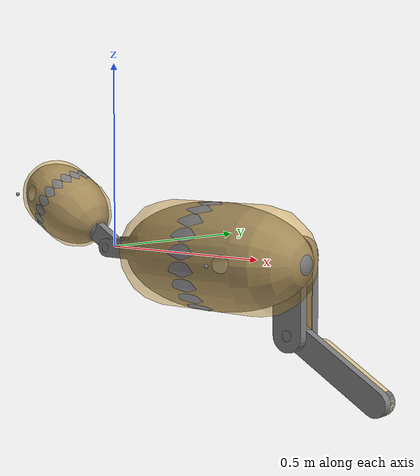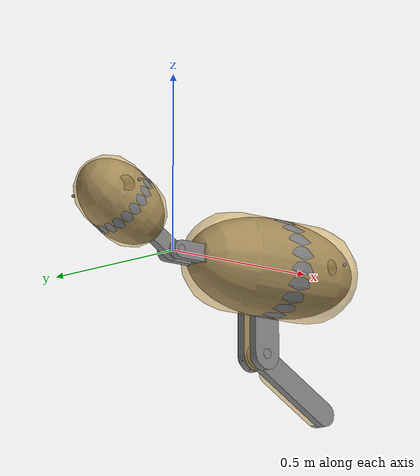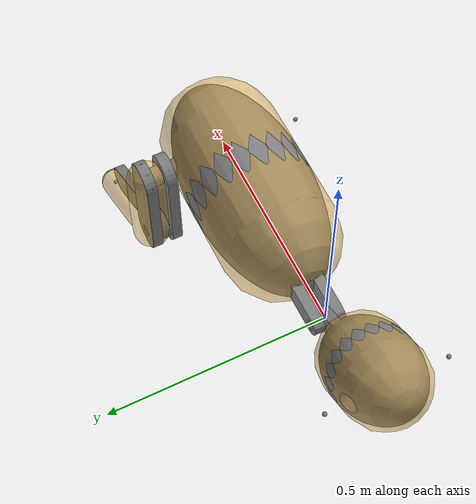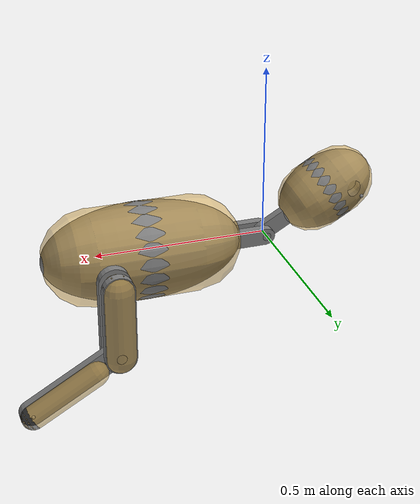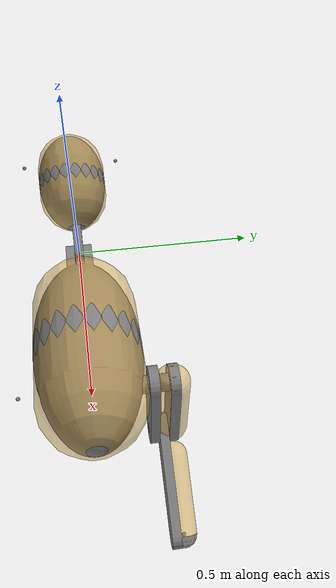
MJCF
<mujoco model="cheetah">
  <compiler angle="radian" meshdir="meshes/"/>

  <asset>
    <mesh name="base" file="base.STL"/>
    <mesh name="spine" file="spine.STL"/>
    <mesh name="fl_hip" file="fl_hip.STL"/>
    <mesh name="fl_knee" file="fl_knee.STL"/>
  </asset>

  <worldbody>
    <body name="base">
      <inertial pos="0.36059 -3.5411e-08 2.6263e-08" quat="0.500003 0.500003 0.499997 0.499997" mass="4" diaginertia="0.086585 0.086267 0.031067"/>
      <geom type="mesh" mesh="base"/>
      <geom size="0.14 0.15" pos="0.365 0 0" quat="0.707107 0 -0.707107 0" type="capsule" rgba="0.85 0.65 0.25 0.5"/>
      <site name="imu_frame" pos="0.485 0 0"/>
      <site name="fl_hip_mount" pos="0.485 0.1775 0"/>
      <site name="fr_hip_mount" pos="0.485 -0.1775 0"/>
      <body name="spine" quat="0.965926 0 0.25882 0">
        <inertial pos="-0.21386 2.4147e-07 -3.6136e-08" quat="0.500007 0.499998 0.5 0.499994" mass="2.818" diaginertia="0.019596 0.019319 0.0104"/>
        <joint name="spine_joint" pos="0 0 0" axis="0 1 0" range="-0.78 0.78" armature="0.011" damping="0.024"/>
        <geom type="mesh" mesh="spine"/>
        <geom size="0.0975 0.04875" pos="-0.22125 0 0" quat="0.707107 0 0.707107 0" type="capsule" rgba="0.85 0.65 0.25 0.5"/>
        <site name="bl_hip_mount" pos="-0.28023 0.1375 0" quat="0.999048 0 0.0436192 0"/>
        <site name="br_hip_mount" pos="-0.28023 -0.1375 0" quat="0.999048 0 0.0436192 0"/>
      </body>
      <body name="fl_hip" pos="0.485 0.1775 0">
        <inertial pos="0 -0.0083713 -0.088755" quat="0.997892 0.0648985 0 0" mass="0.42319" diaginertia="0.0034493 0.00319477 0.000746558"/>
        <joint name="fl_hip_joint" pos="0 0 0" axis="0 1 0"/>
        <geom type="mesh" mesh="fl_hip"/>
        <geom size="0.045 0.105" pos="0 0.0225 -0.105" type="capsule" rgba="0.85 0.65 0.25 0.5"/>
        <body name="fl_knee" pos="0 0 -0.21" quat="0.965926 0 0.25882 0">
          <inertial pos="0.13698 0 0" quat="0.5 0.5 0.5 0.5" mass="0.19172" diaginertia="0.0020898 0.0020349 8.8217e-05"/>
          <joint name="fl_knee_joint" pos="0 0 0" axis="0 1 0"/>
          <geom type="mesh" mesh="fl_knee"/>
          <geom size="0.035 0.105" pos="0.185 0.0225 0" quat="0.707107 0 -0.707107 0" type="capsule" rgba="0.85 0.65 0.25 0.5"/>
          <body name="fl_foot" pos="0.29 0.0225 0">
            <inertial pos="0 0 0" mass="0.001" diaginertia="0.001 0.001 0.001"/>
            <geom size="0.035" group="1" friction="0.8 0.02 0.01" solimp="0.015 1 0.031" rgba="0 0 0 0.5"/>
            <site name="fl_foot" pos="0 0 0"/>
          </body>
        </body>
      </body>
    </body>
  </worldbody>

  <actuator>
    <general name="spine_act" joint="spine_joint" forcerange="-18 18" biastype="affine" gainprm="50" biasprm="0 -50 -0.5"/>
    <general name="fl_hip_act" joint="fl_hip_joint"/>
    <general name="fl_knee_act" joint="fl_knee_joint"/>
  </actuator>

  <sensor>
    <gyro site="imu_frame" name="gyro"/>
    <velocimeter site="imu_frame" name="local_linvel"/>
    <accelerometer site="imu_frame" name="accelerometer"/>
    <framepos objtype="site" objname="imu_frame" name="global_position"/>
    <framezaxis objtype="site" objname="imu_frame" name="upvector"/>
    <framelinvel objtype="site" objname="imu_frame" name="global_linvel"/>
    <frameangvel objtype="site" objname="imu_frame" name="global_angvel"/>
    <framequat objtype="site" objname="imu_frame" name="orientation"/>
    <jointpos joint="fl_hip_joint" name="fl_hip_pos"/>
    <jointpos joint="fl_knee_joint" name="fl_knee_pos"/>
    <jointvel joint="fl_hip_joint" name="fl_hip_vel"/>
    <jointvel joint="fl_knee_joint" name="fl_knee_vel"/>
  </sensor>
</mujoco>
